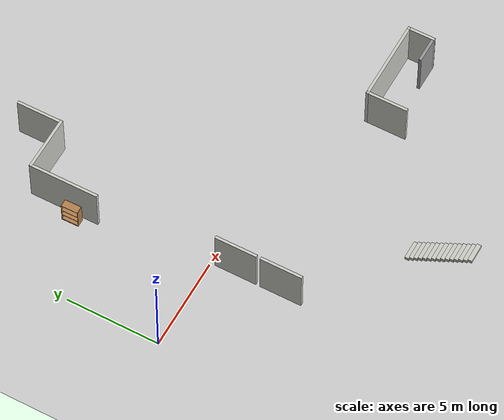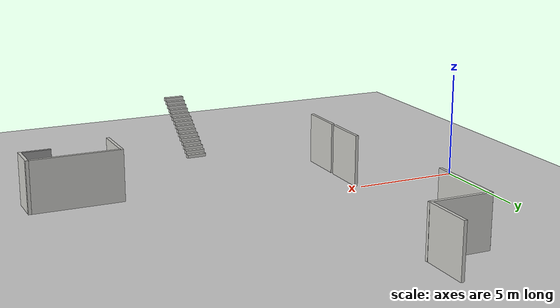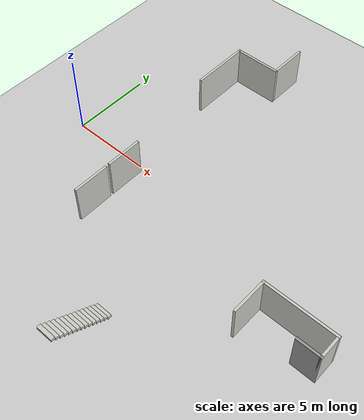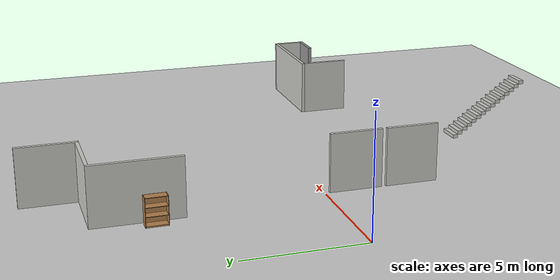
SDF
<sdf version="1.7">
 <world name="default">
  <model name="ground_plane">
   <static>1</static>
   <link name="link">
    <collision name="collision">
     <geometry><plane><normal>0 0 1</normal><size>100 100</size></plane></geometry>
     <surface>
      <contact><collide_bitmask>65535</collide_bitmask></contact>
      <friction><ode><mu>100</mu><mu2>50</mu2></ode></friction>
     </surface>
    </collision>
    <visual name="visual">
     <cast_shadows>0</cast_shadows>
     <geometry><plane><normal>0 0 1</normal><size>100 100</size></plane></geometry>
     <material>
      <script><uri>file://media/materials/scripts/gazebo.material</uri><name>Gazebo/Grey</name></script>
     </material>
    </visual>
   </link>
  </model>
  <model name="map_depo">
   <link name="Stairs_0">
    <visual name="Stairs_0_Visual_9">
     <pose>1.22447 -8.88721 1.58333 0 -0 0</pose>
     <geometry><box><size>1 0.233333 0.166667</size></box></geometry>
     <material>
      <script><uri>file://media/materials/scripts/gazebo.material</uri><name>Gazebo/CeilingTiled</name></script>
      <ambient>1 1 1 1</ambient>
      <shader type="pixel"/>
     </material>
     <meta><layer>0</layer></meta>
    </visual>
    <visual name="Stairs_0_Visual_12">
     <pose>1.22447 -9.58721 2.08333 0 -0 0</pose>
     <geometry><box><size>1 0.233333 0.166667</size></box></geometry>
     <material>
      <script><uri>file://media/materials/scripts/gazebo.material</uri><name>Gazebo/CeilingTiled</name></script>
      <ambient>1 1 1 1</ambient>
      <shader type="pixel"/>
     </material>
     <meta><layer>0</layer></meta>
    </visual>
    <visual name="Stairs_0_Visual_4">
     <pose>1.22447 -7.72054 0.75 0 -0 0</pose>
     <geometry><box><size>1 0.233333 0.166667</size></box></geometry>
     <material>
      <script><uri>file://media/materials/scripts/gazebo.material</uri><name>Gazebo/CeilingTiled</name></script>
      <ambient>1 1 1 1</ambient>
      <shader type="pixel"/>
     </material>
     <meta><layer>0</layer></meta>
    </visual>
    <visual name="Stairs_0_Visual_7">
     <pose>1.22447 -8.42054 1.25 0 -0 0</pose>
     <geometry><box><size>1 0.233333 0.166667</size></box></geometry>
     <material>
      <script><uri>file://media/materials/scripts/gazebo.material</uri><name>Gazebo/CeilingTiled</name></script>
      <ambient>1 1 1 1</ambient>
      <shader type="pixel"/>
     </material>
     <meta><layer>0</layer></meta>
    </visual>
    <visual name="Stairs_0_Visual_14">
     <pose>1.22447 -10.0539 2.41667 0 -0 0</pose>
     <geometry><box><size>1 0.233333 0.166667</size></box></geometry>
     <material>
      <script><uri>file://media/materials/scripts/gazebo.material</uri><name>Gazebo/CeilingTiled</name></script>
      <ambient>1 1 1 1</ambient>
      <shader type="pixel"/>
     </material>
     <meta><layer>0</layer></meta>
    </visual>
    <visual name="Stairs_0_Visual_0">
     <pose>1.22447 -6.78721 0.083333 0 -0 0</pose>
     <geometry><box><size>1 0.233333 0.166667</size></box></geometry>
     <material>
      <script><uri>file://media/materials/scripts/gazebo.material</uri><name>Gazebo/CeilingTiled</name></script>
      <ambient>1 1 1 1</ambient>
      <shader type="pixel"/>
     </material>
     <meta><layer>0</layer></meta>
    </visual>
    <visual name="Stairs_0_Visual_10">
     <pose>1.22447 -9.12054 1.75 0 -0 0</pose>
     <geometry><box><size>1 0.233333 0.166667</size></box></geometry>
     <material>
      <script><uri>file://media/materials/scripts/gazebo.material</uri><name>Gazebo/CeilingTiled</name></script>
      <ambient>1 1 1 1</ambient>
      <shader type="pixel"/>
     </material>
     <meta><layer>0</layer></meta>
    </visual>
    <visual name="Stairs_0_Visual_6">
     <pose>1.22447 -8.18721 1.08333 0 -0 0</pose>
     <geometry><box><size>1 0.233333 0.166667</size></box></geometry>
     <material>
      <script><uri>file://media/materials/scripts/gazebo.material</uri><name>Gazebo/CeilingTiled</name></script>
      <ambient>1 1 1 1</ambient>
      <shader type="pixel"/>
     </material>
     <meta><layer>0</layer></meta>
    </visual>
    <visual name="Stairs_0_Visual_5">
     <pose>1.22447 -7.95388 0.916667 0 -0 0</pose>
     <geometry><box><size>1 0.233333 0.166667</size></box></geometry>
     <material>
      <script><uri>file://media/materials/scripts/gazebo.material</uri><name>Gazebo/CeilingTiled</name></script>
      <ambient>1 1 1 1</ambient>
      <shader type="pixel"/>
     </material>
     <meta><layer>0</layer></meta>
    </visual>
    <visual name="Stairs_0_Visual_2">
     <pose>1.22447 -7.25387 0.416667 0 -0 0</pose>
     <geometry><box><size>1 0.233333 0.166667</size></box></geometry>
     <material>
      <script><uri>file://media/materials/scripts/gazebo.material</uri><name>Gazebo/CeilingTiled</name></script>
      <ambient>1 1 1 1</ambient>
      <shader type="pixel"/>
     </material>
     <meta><layer>0</layer></meta>
    </visual>
    <visual name="Stairs_0_Visual_8">
     <pose>1.22447 -8.65388 1.41667 0 -0 0</pose>
     <geometry><box><size>1 0.233333 0.166667</size></box></geometry>
     <material>
      <script><uri>file://media/materials/scripts/gazebo.material</uri><name>Gazebo/CeilingTiled</name></script>
      <ambient>1 1 1 1</ambient>
      <shader type="pixel"/>
     </material>
     <meta><layer>0</layer></meta>
    </visual>
    <visual name="Stairs_0_Visual_13">
     <pose>1.22447 -9.82054 2.25 0 -0 0</pose>
     <geometry><box><size>1 0.233333 0.166667</size></box></geometry>
     <material>
      <script><uri>file://media/materials/scripts/gazebo.material</uri><name>Gazebo/CeilingTiled</name></script>
      <ambient>1 1 1 1</ambient>
      <shader type="pixel"/>
     </material>
     <meta><layer>0</layer></meta>
    </visual>
    <visual name="Stairs_0_Visual_1">
     <pose>1.22447 -7.02054 0.25 0 -0 0</pose>
     <geometry><box><size>1 0.233333 0.166667</size></box></geometry>
     <material>
      <script><uri>file://media/materials/scripts/gazebo.material</uri><name>Gazebo/CeilingTiled</name></script>
      <ambient>1 1 1 1</ambient>
      <shader type="pixel"/>
     </material>
     <meta><layer>0</layer></meta>
    </visual>
    <visual name="Stairs_0_Visual_11">
     <pose>1.22447 -9.35388 1.91667 0 -0 0</pose>
     <geometry><box><size>1 0.233333 0.166667</size></box></geometry>
     <material>
      <script><uri>file://media/materials/scripts/gazebo.material</uri><name>Gazebo/CeilingTiled</name></script>
      <ambient>1 1 1 1</ambient>
      <shader type="pixel"/>
     </material>
     <meta><layer>0</layer></meta>
    </visual>
    <visual name="Stairs_0_Visual_3">
     <pose>1.22447 -7.48721 0.583333 0 -0 0</pose>
     <geometry><box><size>1 0.233333 0.166667</size></box></geometry>
     <material>
      <script><uri>file://media/materials/scripts/gazebo.material</uri><name>Gazebo/CeilingTiled</name></script>
      <ambient>1 1 1 1</ambient>
      <shader type="pixel"/>
     </material>
     <meta><layer>0</layer></meta>
    </visual>
    <collision name="Stairs_0_Collision_11">
     <pose>1.22447 -9.35388 1.91667 0 -0 0</pose>
     <geometry><box><size>1 0.233333 0.166667</size></box></geometry>
     <surface>
      <friction>
       <ode><mu>1</mu><mu2>1</mu2><fdir1>0 0 0</fdir1><slip1>0</slip1><slip2>0</slip2></ode>
       <torsional>
        <coefficient>1</coefficient>
        <patch_radius>0</patch_radius>
        <surface_radius>0</surface_radius>
        <use_patch_radius>1</use_patch_radius>
        <ode><slip>0</slip></ode>
       </torsional>
      </friction>
      <bounce><restitution_coefficient>0</restitution_coefficient><threshold>1e+06</threshold></bounce>
      <contact>
       <collide_without_contact>0</collide_without_contact>
       <collide_without_contact_bitmask>1</collide_without_contact_bitmask>
       <collide_bitmask>1</collide_bitmask>
       <ode>
        <soft_cfm>0</soft_cfm>
        <soft_erp>0.2</soft_erp>
        <kp>1e+13</kp>
        <kd>1</kd>
        <max_vel>0.01</max_vel>
        <min_depth>0</min_depth>
       </ode>
       <bullet>
        <split_impulse>1</split_impulse>
        <split_impulse_penetration_threshold>-0.01</split_impulse_penetration_threshold>
        <soft_cfm>0</soft_cfm>
        <soft_erp>0.2</soft_erp>
        <kp>1e+13</kp>
        <kd>1</kd>
       </bullet>
      </contact>
     </surface>
    </collision>
    <collision name="Stairs_0_Collision_0">
     <pose>1.22447 -6.78721 0.083333 0 -0 0</pose>
     <geometry><box><size>1 0.233333 0.166667</size></box></geometry>
     <surface>
      <friction>
       <ode><mu>1</mu><mu2>1</mu2><fdir1>0 0 0</fdir1><slip1>0</slip1><slip2>0</slip2></ode>
       <torsional>
        <coefficient>1</coefficient>
        <patch_radius>0</patch_radius>
        <surface_radius>0</surface_radius>
        <use_patch_radius>1</use_patch_radius>
        <ode><slip>0</slip></ode>
       </torsional>
      </friction>
      <bounce><restitution_coefficient>0</restitution_coefficient><threshold>1e+06</threshold></bounce>
      <contact>
       <collide_without_contact>0</collide_without_contact>
       <collide_without_contact_bitmask>1</collide_without_contact_bitmask>
       <collide_bitmask>1</collide_bitmask>
       <ode>
        <soft_cfm>0</soft_cfm>
        <soft_erp>0.2</soft_erp>
        <kp>1e+13</kp>
        <kd>1</kd>
        <max_vel>0.01</max_vel>
        <min_depth>0</min_depth>
       </ode>
       <bullet>
        <split_impulse>1</split_impulse>
        <split_impulse_penetration_threshold>-0.01</split_impulse_penetration_threshold>
        <soft_cfm>0</soft_cfm>
        <soft_erp>0.2</soft_erp>
        <kp>1e+13</kp>
        <kd>1</kd>
       </bullet>
      </contact>
     </surface>
    </collision>
    <collision name="Stairs_0_Collision_3">
     <pose>1.22447 -7.48721 0.583333 0 -0 0</pose>
     <geometry><box><size>1 0.233333 0.166667</size></box></geometry>
     <surface>
      <friction>
       <ode><mu>1</mu><mu2>1</mu2><fdir1>0 0 0</fdir1><slip1>0</slip1><slip2>0</slip2></ode>
       <torsional>
        <coefficient>1</coefficient>
        <patch_radius>0</patch_radius>
        <surface_radius>0</surface_radius>
        <use_patch_radius>1</use_patch_radius>
        <ode><slip>0</slip></ode>
       </torsional>
      </friction>
      <bounce><restitution_coefficient>0</restitution_coefficient><threshold>1e+06</threshold></bounce>
      <contact>
       <collide_without_contact>0</collide_without_contact>
       <collide_without_contact_bitmask>1</collide_without_contact_bitmask>
       <collide_bitmask>1</collide_bitmask>
       <ode>
        <soft_cfm>0</soft_cfm>
        <soft_erp>0.2</soft_erp>
        <kp>1e+13</kp>
        <kd>1</kd>
        <max_vel>0.01</max_vel>
        <min_depth>0</min_depth>
       </ode>
       <bullet>
        <split_impulse>1</split_impulse>
        <split_impulse_penetration_threshold>-0.01</split_impulse_penetration_threshold>
        <soft_cfm>0</soft_cfm>
        <soft_erp>0.2</soft_erp>
        <kp>1e+13</kp>
        <kd>1</kd>
       </bullet>
      </contact>
     </surface>
    </collision>
    <collision name="Stairs_0_Collision_9">
     <pose>1.22447 -8.88721 1.58333 0 -0 0</pose>
     <geometry><box><size>1 0.233333 0.166667</size></box></geometry>
     <surface>
      <friction>
       <ode><mu>1</mu><mu2>1</mu2><fdir1>0 0 0</fdir1><slip1>0</slip1><slip2>0</slip2></ode>
       <torsional>
        <coefficient>1</coefficient>
        <patch_radius>0</patch_radius>
        <surface_radius>0</surface_radius>
        <use_patch_radius>1</use_patch_radius>
        <ode><slip>0</slip></ode>
       </torsional>
      </friction>
      <bounce><restitution_coefficient>0</restitution_coefficient><threshold>1e+06</threshold></bounce>
      <contact>
       <collide_without_contact>0</collide_without_contact>
       <collide_without_contact_bitmask>1</collide_without_contact_bitmask>
       <collide_bitmask>1</collide_bitmask>
       <ode>
        <soft_cfm>0</soft_cfm>
        <soft_erp>0.2</soft_erp>
        <kp>1e+13</kp>
        <kd>1</kd>
        <max_vel>0.01</max_vel>
        <min_depth>0</min_depth>
       </ode>
       <bullet>
        <split_impulse>1</split_impulse>
        <split_impulse_penetration_threshold>-0.01</split_impulse_penetration_threshold>
        <soft_cfm>0</soft_cfm>
        <soft_erp>0.2</soft_erp>
        <kp>1e+13</kp>
        <kd>1</kd>
       </bullet>
      </contact>
     </surface>
    </collision>
    <collision name="Stairs_0_Collision_8">
     <pose>1.22447 -8.65388 1.41667 0 -0 0</pose>
     <geometry><box><size>1 0.233333 0.166667</size></box></geometry>
     <surface>
      <friction>
       <ode><mu>1</mu><mu2>1</mu2><fdir1>0 0 0</fdir1><slip1>0</slip1><slip2>0</slip2></ode>
       <torsional>
        <coefficient>1</coefficient>
        <patch_radius>0</patch_radius>
        <surface_radius>0</surface_radius>
        <use_patch_radius>1</use_patch_radius>
        <ode><slip>0</slip></ode>
       </torsional>
      </friction>
      <bounce><restitution_coefficient>0</restitution_coefficient><threshold>1e+06</threshold></bounce>
      <contact>
       <collide_without_contact>0</collide_without_contact>
       <collide_without_contact_bitmask>1</collide_without_contact_bitmask>
       <collide_bitmask>1</collide_bitmask>
       <ode>
        <soft_cfm>0</soft_cfm>
        <soft_erp>0.2</soft_erp>
        <kp>1e+13</kp>
        <kd>1</kd>
        <max_vel>0.01</max_vel>
        <min_depth>0</min_depth>
       </ode>
       <bullet>
        <split_impulse>1</split_impulse>
        <split_impulse_penetration_threshold>-0.01</split_impulse_penetration_threshold>
        <soft_cfm>0</soft_cfm>
        <soft_erp>0.2</soft_erp>
        <kp>1e+13</kp>
        <kd>1</kd>
       </bullet>
      </contact>
     </surface>
    </collision>
    <collision name="Stairs_0_Collision_6">
     <pose>1.22447 -8.18721 1.08333 0 -0 0</pose>
     <geometry><box><size>1 0.233333 0.166667</size></box></geometry>
     <surface>
      <friction>
       <ode><mu>1</mu><mu2>1</mu2><fdir1>0 0 0</fdir1><slip1>0</slip1><slip2>0</slip2></ode>
       <torsional>
        <coefficient>1</coefficient>
        <patch_radius>0</patch_radius>
        <surface_radius>0</surface_radius>
        <use_patch_radius>1</use_patch_radius>
        <ode><slip>0</slip></ode>
       </torsional>
      </friction>
      <bounce><restitution_coefficient>0</restitution_coefficient><threshold>1e+06</threshold></bounce>
      <contact>
       <collide_without_contact>0</collide_without_contact>
       <collide_without_contact_bitmask>1</collide_without_contact_bitmask>
       <collide_bitmask>1</collide_bitmask>
       <ode>
        <soft_cfm>0</soft_cfm>
        <soft_erp>0.2</soft_erp>
        <kp>1e+13</kp>
        <kd>1</kd>
        <max_vel>0.01</max_vel>
        <min_depth>0</min_depth>
       </ode>
       <bullet>
        <split_impulse>1</split_impulse>
        <split_impulse_penetration_threshold>-0.01</split_impulse_penetration_threshold>
        <soft_cfm>0</soft_cfm>
        <soft_erp>0.2</soft_erp>
        <kp>1e+13</kp>
        <kd>1</kd>
       </bullet>
      </contact>
     </surface>
    </collision>
    <collision name="Stairs_0_Collision_13">
     <pose>1.22447 -9.82054 2.25 0 -0 0</pose>
     <geometry><box><size>1 0.233333 0.166667</size></box></geometry>
     <surface>
      <friction>
       <ode><mu>1</mu><mu2>1</mu2><fdir1>0 0 0</fdir1><slip1>0</slip1><slip2>0</slip2></ode>
       <torsional>
        <coefficient>1</coefficient>
        <patch_radius>0</patch_radius>
        <surface_radius>0</surface_radius>
        <use_patch_radius>1</use_patch_radius>
        <ode><slip>0</slip></ode>
       </torsional>
      </friction>
      <bounce><restitution_coefficient>0</restitution_coefficient><threshold>1e+06</threshold></bounce>
      <contact>
       <collide_without_contact>0</collide_without_contact>
       <collide_without_contact_bitmask>1</collide_without_contact_bitmask>
       <collide_bitmask>1</collide_bitmask>
       <ode>
        <soft_cfm>0</soft_cfm>
        <soft_erp>0.2</soft_erp>
        <kp>1e+13</kp>
        <kd>1</kd>
        <max_vel>0.01</max_vel>
        <min_depth>0</min_depth>
       </ode>
       <bullet>
        <split_impulse>1</split_impulse>
        <split_impulse_penetration_threshold>-0.01</split_impulse_penetration_threshold>
        <soft_cfm>0</soft_cfm>
        <soft_erp>0.2</soft_erp>
        <kp>1e+13</kp>
        <kd>1</kd>
       </bullet>
      </contact>
     </surface>
    </collision>
    <collision name="Stairs_0_Collision_12">
     <pose>1.22447 -9.58721 2.08333 0 -0 0</pose>
     <geometry><box><size>1 0.233333 0.166667</size></box></geometry>
     <surface>
      <friction>
       <ode><mu>1</mu><mu2>1</mu2><fdir1>0 0 0</fdir1><slip1>0</slip1><slip2>0</slip2></ode>
       <torsional>
        <coefficient>1</coefficient>
        <patch_radius>0</patch_radius>
        <surface_radius>0</surface_radius>
        <use_patch_radius>1</use_patch_radius>
        <ode><slip>0</slip></ode>
       </torsional>
      </friction>
      <bounce><restitution_coefficient>0</restitution_coefficient><threshold>1e+06</threshold></bounce>
      <contact>
       <collide_without_contact>0</collide_without_contact>
       <collide_without_contact_bitmask>1</collide_without_contact_bitmask>
       <collide_bitmask>1</collide_bitmask>
       <ode>
        <soft_cfm>0</soft_cfm>
        <soft_erp>0.2</soft_erp>
        <kp>1e+13</kp>
        <kd>1</kd>
        <max_vel>0.01</max_vel>
        <min_depth>0</min_depth>
       </ode>
       <bullet>
        <split_impulse>1</split_impulse>
        <split_impulse_penetration_threshold>-0.01</split_impulse_penetration_threshold>
        <soft_cfm>0</soft_cfm>
        <soft_erp>0.2</soft_erp>
        <kp>1e+13</kp>
        <kd>1</kd>
       </bullet>
      </contact>
     </surface>
    </collision>
    <collision name="Stairs_0_Collision_4">
     <pose>1.22447 -7.72054 0.75 0 -0 0</pose>
     <geometry><box><size>1 0.233333 0.166667</size></box></geometry>
     <surface>
      <friction>
       <ode><mu>1</mu><mu2>1</mu2><fdir1>0 0 0</fdir1><slip1>0</slip1><slip2>0</slip2></ode>
       <torsional>
        <coefficient>1</coefficient>
        <patch_radius>0</patch_radius>
        <surface_radius>0</surface_radius>
        <use_patch_radius>1</use_patch_radius>
        <ode><slip>0</slip></ode>
       </torsional>
      </friction>
      <bounce><restitution_coefficient>0</restitution_coefficient><threshold>1e+06</threshold></bounce>
      <contact>
       <collide_without_contact>0</collide_without_contact>
       <collide_without_contact_bitmask>1</collide_without_contact_bitmask>
       <collide_bitmask>1</collide_bitmask>
       <ode>
        <soft_cfm>0</soft_cfm>
        <soft_erp>0.2</soft_erp>
        <kp>1e+13</kp>
        <kd>1</kd>
        <max_vel>0.01</max_vel>
        <min_depth>0</min_depth>
       </ode>
       <bullet>
        <split_impulse>1</split_impulse>
        <split_impulse_penetration_threshold>-0.01</split_impulse_penetration_threshold>
        <soft_cfm>0</soft_cfm>
        <soft_erp>0.2</soft_erp>
        <kp>1e+13</kp>
        <kd>1</kd>
       </bullet>
      </contact>
     </surface>
    </collision>
    <collision name="Stairs_0_Collision_7">
     <pose>1.22447 -8.42054 1.25 0 -0 0</pose>
     <geometry><box><size>1 0.233333 0.166667</size></box></geometry>
     <surface>
      <friction>
       <ode><mu>1</mu><mu2>1</mu2><fdir1>0 0 0</fdir1><slip1>0</slip1><slip2>0</slip2></ode>
       <torsional>
        <coefficient>1</coefficient>
        <patch_radius>0</patch_radius>
        <surface_radius>0</surface_radius>
        <use_patch_radius>1</use_patch_radius>
        <ode><slip>0</slip></ode>
       </torsional>
      </friction>
      <bounce><restitution_coefficient>0</restitution_coefficient><threshold>1e+06</threshold></bounce>
      <contact>
       <collide_without_contact>0</collide_without_contact>
       <collide_without_contact_bitmask>1</collide_without_contact_bitmask>
       <collide_bitmask>1</collide_bitmask>
       <ode>
        <soft_cfm>0</soft_cfm>
        <soft_erp>0.2</soft_erp>
        <kp>1e+13</kp>
        <kd>1</kd>
        <max_vel>0.01</max_vel>
        <min_depth>0</min_depth>
       </ode>
       <bullet>
        <split_impulse>1</split_impulse>
        <split_impulse_penetration_threshold>-0.01</split_impulse_penetration_threshold>
        <soft_cfm>0</soft_cfm>
        <soft_erp>0.2</soft_erp>
        <kp>1e+13</kp>
        <kd>1</kd>
       </bullet>
      </contact>
     </surface>
    </collision>
    <collision name="Stairs_0_Collision_5">
     <pose>1.22447 -7.95388 0.916667 0 -0 0</pose>
     <geometry><box><size>1 0.233333 0.166667</size></box></geometry>
     <surface>
      <friction>
       <ode><mu>1</mu><mu2>1</mu2><fdir1>0 0 0</fdir1><slip1>0</slip1><slip2>0</slip2></ode>
       <torsional>
        <coefficient>1</coefficient>
        <patch_radius>0</patch_radius>
        <surface_radius>0</surface_radius>
        <use_patch_radius>1</use_patch_radius>
        <ode><slip>0</slip></ode>
       </torsional>
      </friction>
      <bounce><restitution_coefficient>0</restitution_coefficient><threshold>1e+06</threshold></bounce>
      <contact>
       <collide_without_contact>0</collide_without_contact>
       <collide_without_contact_bitmask>1</collide_without_contact_bitmask>
       <collide_bitmask>1</collide_bitmask>
       <ode>
        <soft_cfm>0</soft_cfm>
        <soft_erp>0.2</soft_erp>
        <kp>1e+13</kp>
        <kd>1</kd>
        <max_vel>0.01</max_vel>
        <min_depth>0</min_depth>
       </ode>
       <bullet>
        <split_impulse>1</split_impulse>
        <split_impulse_penetration_threshold>-0.01</split_impulse_penetration_threshold>
        <soft_cfm>0</soft_cfm>
        <soft_erp>0.2</soft_erp>
        <kp>1e+13</kp>
        <kd>1</kd>
       </bullet>
      </contact>
     </surface>
    </collision>
    <collision name="Stairs_0_Collision_10">
     <pose>1.22447 -9.12054 1.75 0 -0 0</pose>
     <geometry><box><size>1 0.233333 0.166667</size></box></geometry>
     <surface>
      <friction>
       <ode><mu>1</mu><mu2>1</mu2><fdir1>0 0 0</fdir1><slip1>0</slip1><slip2>0</slip2></ode>
       <torsional>
        <coefficient>1</coefficient>
        <patch_radius>0</patch_radius>
        <surface_radius>0</surface_radius>
        <use_patch_radius>1</use_patch_radius>
        <ode><slip>0</slip></ode>
       </torsional>
      </friction>
      <bounce><restitution_coefficient>0</restitution_coefficient><threshold>1e+06</threshold></bounce>
      <contact>
       <collide_without_contact>0</collide_without_contact>
       <collide_without_contact_bitmask>1</collide_without_contact_bitmask>
       <collide_bitmask>1</collide_bitmask>
       <ode>
        <soft_cfm>0</soft_cfm>
        <soft_erp>0.2</soft_erp>
        <kp>1e+13</kp>
        <kd>1</kd>
        <max_vel>0.01</max_vel>
        <min_depth>0</min_depth>
       </ode>
       <bullet>
        <split_impulse>1</split_impulse>
        <split_impulse_penetration_threshold>-0.01</split_impulse_penetration_threshold>
        <soft_cfm>0</soft_cfm>
        <soft_erp>0.2</soft_erp>
        <kp>1e+13</kp>
        <kd>1</kd>
       </bullet>
      </contact>
     </surface>
    </collision>
    <collision name="Stairs_0_Collision_2">
     <pose>1.22447 -7.25387 0.416667 0 -0 0</pose>
     <geometry><box><size>1 0.233333 0.166667</size></box></geometry>
     <surface>
      <friction>
       <ode><mu>1</mu><mu2>1</mu2><fdir1>0 0 0</fdir1><slip1>0</slip1><slip2>0</slip2></ode>
       <torsional>
        <coefficient>1</coefficient>
        <patch_radius>0</patch_radius>
        <surface_radius>0</surface_radius>
        <use_patch_radius>1</use_patch_radius>
        <ode><slip>0</slip></ode>
       </torsional>
      </friction>
      <bounce><restitution_coefficient>0</restitution_coefficient><threshold>1e+06</threshold></bounce>
      <contact>
       <collide_without_contact>0</collide_without_contact>
       <collide_without_contact_bitmask>1</collide_without_contact_bitmask>
       <collide_bitmask>1</collide_bitmask>
       <ode>
        <soft_cfm>0</soft_cfm>
        <soft_erp>0.2</soft_erp>
        <kp>1e+13</kp>
        <kd>1</kd>
        <max_vel>0.01</max_vel>
        <min_depth>0</min_depth>
       </ode>
       <bullet>
        <split_impulse>1</split_impulse>
        <split_impulse_penetration_threshold>-0.01</split_impulse_penetration_threshold>
        <soft_cfm>0</soft_cfm>
        <soft_erp>0.2</soft_erp>
        <kp>1e+13</kp>
        <kd>1</kd>
       </bullet>
      </contact>
     </surface>
    </collision>
    <collision name="Stairs_0_Collision_14">
     <pose>1.22447 -10.0539 2.41667 0 -0 0</pose>
     <geometry><box><size>1 0.233333 0.166667</size></box></geometry>
     <surface>
      <friction>
       <ode><mu>1</mu><mu2>1</mu2><fdir1>0 0 0</fdir1><slip1>0</slip1><slip2>0</slip2></ode>
       <torsional>
        <coefficient>1</coefficient>
        <patch_radius>0</patch_radius>
        <surface_radius>0</surface_radius>
        <use_patch_radius>1</use_patch_radius>
        <ode><slip>0</slip></ode>
       </torsional>
      </friction>
      <bounce><restitution_coefficient>0</restitution_coefficient><threshold>1e+06</threshold></bounce>
      <contact>
       <collide_without_contact>0</collide_without_contact>
       <collide_without_contact_bitmask>1</collide_without_contact_bitmask>
       <collide_bitmask>1</collide_bitmask>
       <ode>
        <soft_cfm>0</soft_cfm>
        <soft_erp>0.2</soft_erp>
        <kp>1e+13</kp>
        <kd>1</kd>
        <max_vel>0.01</max_vel>
        <min_depth>0</min_depth>
       </ode>
       <bullet>
        <split_impulse>1</split_impulse>
        <split_impulse_penetration_threshold>-0.01</split_impulse_penetration_threshold>
        <soft_cfm>0</soft_cfm>
        <soft_erp>0.2</soft_erp>
        <kp>1e+13</kp>
        <kd>1</kd>
       </bullet>
      </contact>
     </surface>
    </collision>
    <collision name="Stairs_0_Collision_1">
     <pose>1.22447 -7.02054 0.25 0 -0 0</pose>
     <geometry><box><size>1 0.233333 0.166667</size></box></geometry>
     <surface>
      <friction>
       <ode><mu>1</mu><mu2>1</mu2><fdir1>0 0 0</fdir1><slip1>0</slip1><slip2>0</slip2></ode>
       <torsional>
        <coefficient>1</coefficient>
        <patch_radius>0</patch_radius>
        <surface_radius>0</surface_radius>
        <use_patch_radius>1</use_patch_radius>
        <ode><slip>0</slip></ode>
       </torsional>
      </friction>
      <bounce><restitution_coefficient>0</restitution_coefficient><threshold>1e+06</threshold></bounce>
      <contact>
       <collide_without_contact>0</collide_without_contact>
       <collide_without_contact_bitmask>1</collide_without_contact_bitmask>
       <collide_bitmask>1</collide_bitmask>
       <ode>
        <soft_cfm>0</soft_cfm>
        <soft_erp>0.2</soft_erp>
        <kp>1e+13</kp>
        <kd>1</kd>
        <max_vel>0.01</max_vel>
        <min_depth>0</min_depth>
       </ode>
       <bullet>
        <split_impulse>1</split_impulse>
        <split_impulse_penetration_threshold>-0.01</split_impulse_penetration_threshold>
        <soft_cfm>0</soft_cfm>
        <soft_erp>0.2</soft_erp>
        <kp>1e+13</kp>
        <kd>1</kd>
       </bullet>
      </contact>
     </surface>
    </collision>
   </link>
   <link name="Wall_13">
    <pose>-1.7996 12.06 0 0 0 -1.5708</pose>
    <visual name="Wall_13_Visual">
     <pose>0 0 1.25 0 -0 0</pose>
     <geometry><box><size>2.5 0.15 2.5</size></box></geometry>
     <material>
      <script><uri>file://media/materials/scripts/gazebo.material</uri><name>Gazebo/CeilingTiled</name></script>
      <ambient>1 1 1 1</ambient>
      <shader type="pixel"/>
     </material>
     <meta><layer>0</layer></meta>
    </visual>
    <collision name="Wall_13_Collision">
     <pose>0 0 1.25 0 -0 0</pose>
     <geometry><box><size>2.5 0.15 2.5</size></box></geometry>
     <surface>
      <friction>
       <ode><mu>1</mu><mu2>1</mu2><fdir1>0 0 0</fdir1><slip1>0</slip1><slip2>0</slip2></ode>
       <torsional>
        <coefficient>1</coefficient>
        <patch_radius>0</patch_radius>
        <surface_radius>0</surface_radius>
        <use_patch_radius>1</use_patch_radius>
        <ode><slip>0</slip></ode>
       </torsional>
      </friction>
      <bounce><restitution_coefficient>0</restitution_coefficient><threshold>1e+06</threshold></bounce>
      <contact>
       <collide_without_contact>0</collide_without_contact>
       <collide_without_contact_bitmask>1</collide_without_contact_bitmask>
       <collide_bitmask>1</collide_bitmask>
       <ode>
        <soft_cfm>0</soft_cfm>
        <soft_erp>0.2</soft_erp>
        <kp>1e+13</kp>
        <kd>1</kd>
        <max_vel>0.01</max_vel>
        <min_depth>0</min_depth>
       </ode>
       <bullet>
        <split_impulse>1</split_impulse>
        <split_impulse_penetration_threshold>-0.01</split_impulse_penetration_threshold>
        <soft_cfm>0</soft_cfm>
        <soft_erp>0.2</soft_erp>
        <kp>1e+13</kp>
        <kd>1</kd>
       </bullet>
      </contact>
     </surface>
    </collision>
   </link>
   <link name="Wall_14">
    <pose>-3.21429 10.885 0 0 -0 3.14159</pose>
    <visual name="Wall_14_Visual">
     <pose>0 0 1.25 0 -0 0</pose>
     <geometry><box><size>3 0.15 2.5</size></box></geometry>
     <material>
      <script><uri>file://media/materials/scripts/gazebo.material</uri><name>Gazebo/CeilingTiled</name></script>
      <ambient>1 1 1 1</ambient>
      <shader type="pixel"/>
     </material>
     <meta><layer>0</layer></meta>
    </visual>
    <collision name="Wall_14_Collision">
     <pose>0 0 1.25 0 -0 0</pose>
     <geometry><box><size>3 0.15 2.5</size></box></geometry>
     <surface>
      <friction>
       <ode><mu>1</mu><mu2>1</mu2><fdir1>0 0 0</fdir1><slip1>0</slip1><slip2>0</slip2></ode>
       <torsional>
        <coefficient>1</coefficient>
        <patch_radius>0</patch_radius>
        <surface_radius>0</surface_radius>
        <use_patch_radius>1</use_patch_radius>
        <ode><slip>0</slip></ode>
       </torsional>
      </friction>
      <bounce><restitution_coefficient>0</restitution_coefficient><threshold>1e+06</threshold></bounce>
      <contact>
       <collide_without_contact>0</collide_without_contact>
       <collide_without_contact_bitmask>1</collide_without_contact_bitmask>
       <collide_bitmask>1</collide_bitmask>
       <ode>
        <soft_cfm>0</soft_cfm>
        <soft_erp>0.2</soft_erp>
        <kp>1e+13</kp>
        <kd>1</kd>
        <max_vel>0.01</max_vel>
        <min_depth>0</min_depth>
       </ode>
       <bullet>
        <split_impulse>1</split_impulse>
        <split_impulse_penetration_threshold>-0.01</split_impulse_penetration_threshold>
        <soft_cfm>0</soft_cfm>
        <soft_erp>0.2</soft_erp>
        <kp>1e+13</kp>
        <kd>1</kd>
       </bullet>
      </contact>
     </surface>
    </collision>
   </link>
   <link name="Wall_16">
    <pose>-4.6414 9.08497 0 0 0 -1.5708</pose>
    <visual name="Wall_16_Visual">
     <pose>0 0 1.25 0 -0 0</pose>
     <geometry><box><size>3.75 0.15 2.5</size></box></geometry>
     <material>
      <script><uri>file://media/materials/scripts/gazebo.material</uri><name>Gazebo/CeilingTiled</name></script>
      <ambient>1 1 1 1</ambient>
      <shader type="pixel"/>
     </material>
     <meta><layer>0</layer></meta>
    </visual>
    <collision name="Wall_16_Collision">
     <pose>0 0 1.25 0 -0 0</pose>
     <geometry><box><size>3.75 0.15 2.5</size></box></geometry>
     <surface>
      <friction>
       <ode><mu>1</mu><mu2>1</mu2><fdir1>0 0 0</fdir1><slip1>0</slip1><slip2>0</slip2></ode>
       <torsional>
        <coefficient>1</coefficient>
        <patch_radius>0</patch_radius>
        <surface_radius>0</surface_radius>
        <use_patch_radius>1</use_patch_radius>
        <ode><slip>0</slip></ode>
       </torsional>
      </friction>
      <bounce><restitution_coefficient>0</restitution_coefficient><threshold>1e+06</threshold></bounce>
      <contact>
       <collide_without_contact>0</collide_without_contact>
       <collide_without_contact_bitmask>1</collide_without_contact_bitmask>
       <collide_bitmask>1</collide_bitmask>
       <ode>
        <soft_cfm>0</soft_cfm>
        <soft_erp>0.2</soft_erp>
        <kp>1e+13</kp>
        <kd>1</kd>
        <max_vel>0.01</max_vel>
        <min_depth>0</min_depth>
       </ode>
       <bullet>
        <split_impulse>1</split_impulse>
        <split_impulse_penetration_threshold>-0.01</split_impulse_penetration_threshold>
        <soft_cfm>0</soft_cfm>
        <soft_erp>0.2</soft_erp>
        <kp>1e+13</kp>
        <kd>1</kd>
       </bullet>
      </contact>
     </surface>
    </collision>
   </link>
   <link name="Wall_23">
    <pose>-3.92312 0.014856 0 0 0 -1.5708</pose>
    <visual name="Wall_23_Visual">
     <pose>0 0 1.25 0 -0 0</pose>
     <geometry><box><size>2.25 0.15 2.5</size></box></geometry>
     <material>
      <script><uri>file://media/materials/scripts/gazebo.material</uri><name>Gazebo/CeilingTiled</name></script>
      <ambient>1 1 1 1</ambient>
      <shader type="pixel"/>
     </material>
     <meta><layer>0</layer></meta>
    </visual>
    <collision name="Wall_23_Collision">
     <pose>0 0 1.25 0 -0 0</pose>
     <geometry><box><size>2.25 0.15 2.5</size></box></geometry>
     <surface>
      <friction>
       <ode><mu>1</mu><mu2>1</mu2><fdir1>0 0 0</fdir1><slip1>0</slip1><slip2>0</slip2></ode>
       <torsional>
        <coefficient>1</coefficient>
        <patch_radius>0</patch_radius>
        <surface_radius>0</surface_radius>
        <use_patch_radius>1</use_patch_radius>
        <ode><slip>0</slip></ode>
       </torsional>
      </friction>
      <bounce><restitution_coefficient>0</restitution_coefficient><threshold>1e+06</threshold></bounce>
      <contact>
       <collide_without_contact>0</collide_without_contact>
       <collide_without_contact_bitmask>1</collide_without_contact_bitmask>
       <collide_bitmask>1</collide_bitmask>
       <ode>
        <soft_cfm>0</soft_cfm>
        <soft_erp>0.2</soft_erp>
        <kp>1e+13</kp>
        <kd>1</kd>
        <max_vel>0.01</max_vel>
        <min_depth>0</min_depth>
       </ode>
       <bullet>
        <split_impulse>1</split_impulse>
        <split_impulse_penetration_threshold>-0.01</split_impulse_penetration_threshold>
        <soft_cfm>0</soft_cfm>
        <soft_erp>0.2</soft_erp>
        <kp>1e+13</kp>
        <kd>1</kd>
       </bullet>
      </contact>
     </surface>
    </collision>
   </link>
   <link name="Wall_59">
    <pose>-3.92312 -2.43514 0 0 0 -1.5708</pose>
    <visual name="Wall_59_Visual">
     <pose>0 0 1.25 0 -0 0</pose>
     <geometry><box><size>2.25 0.15 2.5</size></box></geometry>
     <material>
      <script><uri>file://media/materials/scripts/gazebo.material</uri><name>Gazebo/CeilingTiled</name></script>
      <ambient>1 1 1 1</ambient>
      <shader type="pixel"/>
     </material>
     <meta><layer>0</layer></meta>
    </visual>
    <collision name="Wall_59_Collision">
     <pose>0 0 1.25 0 -0 0</pose>
     <geometry><box><size>2.25 0.15 2.5</size></box></geometry>
     <surface>
      <friction>
       <ode><mu>1</mu><mu2>1</mu2><fdir1>0 0 0</fdir1><slip1>0</slip1><slip2>0</slip2></ode>
       <torsional>
        <coefficient>1</coefficient>
        <patch_radius>0</patch_radius>
        <surface_radius>0</surface_radius>
        <use_patch_radius>1</use_patch_radius>
        <ode><slip>0</slip></ode>
       </torsional>
      </friction>
      <bounce><restitution_coefficient>0</restitution_coefficient><threshold>1e+06</threshold></bounce>
      <contact>
       <collide_without_contact>0</collide_without_contact>
       <collide_without_contact_bitmask>1</collide_without_contact_bitmask>
       <collide_bitmask>1</collide_bitmask>
       <ode>
        <soft_cfm>0</soft_cfm>
        <soft_erp>0.2</soft_erp>
        <kp>1e+13</kp>
        <kd>1</kd>
        <max_vel>0.01</max_vel>
        <min_depth>0</min_depth>
       </ode>
       <bullet>
        <split_impulse>1</split_impulse>
        <split_impulse_penetration_threshold>-0.01</split_impulse_penetration_threshold>
        <soft_cfm>0</soft_cfm>
        <soft_erp>0.2</soft_erp>
        <kp>1e+13</kp>
        <kd>1</kd>
       </bullet>
      </contact>
     </surface>
    </collision>
   </link>
   <link name="Wall_94">
    <pose>10.5749 -2.68497 0 0 -0 0</pose>
    <visual name="Wall_94_Visual">
     <pose>0 0 1.25 0 -0 0</pose>
     <geometry><box><size>1.5 0.15 2.5</size></box></geometry>
     <material>
      <script><uri>file://media/materials/scripts/gazebo.material</uri><name>Gazebo/Grey</name></script>
      <ambient>1 1 1 1</ambient>
      <shader type="pixel"/>
     </material>
     <meta><layer>0</layer></meta>
    </visual>
    <collision name="Wall_94_Collision">
     <pose>0 0 1.25 0 -0 0</pose>
     <geometry><box><size>1.5 0.15 2.5</size></box></geometry>
     <surface>
      <friction>
       <ode><mu>1</mu><mu2>1</mu2><fdir1>0 0 0</fdir1><slip1>0</slip1><slip2>0</slip2></ode>
       <torsional>
        <coefficient>1</coefficient>
        <patch_radius>0</patch_radius>
        <surface_radius>0</surface_radius>
        <use_patch_radius>1</use_patch_radius>
        <ode><slip>0</slip></ode>
       </torsional>
      </friction>
      <bounce><restitution_coefficient>0</restitution_coefficient><threshold>1e+06</threshold></bounce>
      <contact>
       <collide_without_contact>0</collide_without_contact>
       <collide_without_contact_bitmask>1</collide_without_contact_bitmask>
       <collide_bitmask>1</collide_bitmask>
       <ode>
        <soft_cfm>0</soft_cfm>
        <soft_erp>0.2</soft_erp>
        <kp>1e+13</kp>
        <kd>1</kd>
        <max_vel>0.01</max_vel>
        <min_depth>0</min_depth>
       </ode>
       <bullet>
        <split_impulse>1</split_impulse>
        <split_impulse_penetration_threshold>-0.01</split_impulse_penetration_threshold>
        <soft_cfm>0</soft_cfm>
        <soft_erp>0.2</soft_erp>
        <kp>1e+13</kp>
        <kd>1</kd>
       </bullet>
      </contact>
     </surface>
    </collision>
   </link>
   <link name="Wall_95">
    <pose>11.2499 -2.00997 0 0 -0 1.5708</pose>
    <visual name="Wall_95_Visual">
     <pose>0 0 1.25 0 -0 0</pose>
     <geometry><box><size>1.5 0.15 2.5</size></box></geometry>
     <material>
      <script><uri>file://media/materials/scripts/gazebo.material</uri><name>Gazebo/CeilingTiled</name></script>
      <ambient>1 1 1 1</ambient>
      <shader type="pixel"/>
     </material>
     <meta><layer>0</layer></meta>
    </visual>
    <collision name="Wall_95_Collision">
     <pose>0 0 1.25 0 -0 0</pose>
     <geometry><box><size>1.5 0.15 2.5</size></box></geometry>
     <surface>
      <friction>
       <ode><mu>1</mu><mu2>1</mu2><fdir1>0 0 0</fdir1><slip1>0</slip1><slip2>0</slip2></ode>
       <torsional>
        <coefficient>1</coefficient>
        <patch_radius>0</patch_radius>
        <surface_radius>0</surface_radius>
        <use_patch_radius>1</use_patch_radius>
        <ode><slip>0</slip></ode>
       </torsional>
      </friction>
      <bounce><restitution_coefficient>0</restitution_coefficient><threshold>1e+06</threshold></bounce>
      <contact>
       <collide_without_contact>0</collide_without_contact>
       <collide_without_contact_bitmask>1</collide_without_contact_bitmask>
       <collide_bitmask>1</collide_bitmask>
       <ode>
        <soft_cfm>0</soft_cfm>
        <soft_erp>0.2</soft_erp>
        <kp>1e+13</kp>
        <kd>1</kd>
        <max_vel>0.01</max_vel>
        <min_depth>0</min_depth>
       </ode>
       <bullet>
        <split_impulse>1</split_impulse>
        <split_impulse_penetration_threshold>-0.01</split_impulse_penetration_threshold>
        <soft_cfm>0</soft_cfm>
        <soft_erp>0.2</soft_erp>
        <kp>1e+13</kp>
        <kd>1</kd>
       </bullet>
      </contact>
     </surface>
    </collision>
   </link>
   <link name="Wall_96">
    <pose>9.07491 -1.33497 0 0 -0 3.14159</pose>
    <visual name="Wall_96_Visual">
     <pose>0 0 1.25 0 -0 0</pose>
     <geometry><box><size>4.5 0.15 2.5</size></box></geometry>
     <material>
      <script><uri>file://media/materials/scripts/gazebo.material</uri><name>Gazebo/CeilingTiled</name></script>
      <ambient>1 1 1 1</ambient>
      <shader type="pixel"/>
     </material>
     <meta><layer>0</layer></meta>
    </visual>
    <collision name="Wall_96_Collision">
     <pose>0 0 1.25 0 -0 0</pose>
     <geometry><box><size>4.5 0.15 2.5</size></box></geometry>
     <surface>
      <friction>
       <ode><mu>1</mu><mu2>1</mu2><fdir1>0 0 0</fdir1><slip1>0</slip1><slip2>0</slip2></ode>
       <torsional>
        <coefficient>1</coefficient>
        <patch_radius>0</patch_radius>
        <surface_radius>0</surface_radius>
        <use_patch_radius>1</use_patch_radius>
        <ode><slip>0</slip></ode>
       </torsional>
      </friction>
      <bounce><restitution_coefficient>0</restitution_coefficient><threshold>1e+06</threshold></bounce>
      <contact>
       <collide_without_contact>0</collide_without_contact>
       <collide_without_contact_bitmask>1</collide_without_contact_bitmask>
       <collide_bitmask>1</collide_bitmask>
       <ode>
        <soft_cfm>0</soft_cfm>
        <soft_erp>0.2</soft_erp>
        <kp>1e+13</kp>
        <kd>1</kd>
        <max_vel>0.01</max_vel>
        <min_depth>0</min_depth>
       </ode>
       <bullet>
        <split_impulse>1</split_impulse>
        <split_impulse_penetration_threshold>-0.01</split_impulse_penetration_threshold>
        <soft_cfm>0</soft_cfm>
        <soft_erp>0.2</soft_erp>
        <kp>1e+13</kp>
        <kd>1</kd>
       </bullet>
      </contact>
     </surface>
    </collision>
   </link>
   <link name="Wall_97">
    <pose>6.89991 -2.38497 0 0 0 -1.5708</pose>
    <visual name="Wall_97_Visual">
     <pose>0 0 1.25 0 -0 0</pose>
     <geometry><box><size>2.25 0.15 2.5</size></box></geometry>
     <material>
      <script><uri>file://media/materials/scripts/gazebo.material</uri><name>Gazebo/CeilingTiled</name></script>
      <ambient>1 1 1 1</ambient>
      <shader type="pixel"/>
     </material>
     <meta><layer>0</layer></meta>
    </visual>
    <collision name="Wall_97_Collision">
     <pose>0 0 1.25 0 -0 0</pose>
     <geometry><box><size>2.25 0.15 2.5</size></box></geometry>
     <surface>
      <friction>
       <ode><mu>1</mu><mu2>1</mu2><fdir1>0 0 0</fdir1><slip1>0</slip1><slip2>0</slip2></ode>
       <torsional>
        <coefficient>1</coefficient>
        <patch_radius>0</patch_radius>
        <surface_radius>0</surface_radius>
        <use_patch_radius>1</use_patch_radius>
        <ode><slip>0</slip></ode>
       </torsional>
      </friction>
      <bounce><restitution_coefficient>0</restitution_coefficient><threshold>1e+06</threshold></bounce>
      <contact>
       <collide_without_contact>0</collide_without_contact>
       <collide_without_contact_bitmask>1</collide_without_contact_bitmask>
       <collide_bitmask>1</collide_bitmask>
       <ode>
        <soft_cfm>0</soft_cfm>
        <soft_erp>0.2</soft_erp>
        <kp>1e+13</kp>
        <kd>1</kd>
        <max_vel>0.01</max_vel>
        <min_depth>0</min_depth>
       </ode>
       <bullet>
        <split_impulse>1</split_impulse>
        <split_impulse_penetration_threshold>-0.01</split_impulse_penetration_threshold>
        <soft_cfm>0</soft_cfm>
        <soft_erp>0.2</soft_erp>
        <kp>1e+13</kp>
        <kd>1</kd>
       </bullet>
      </contact>
     </surface>
    </collision>
   </link>
   <static>1</static>
   <pose>9.09356 -1.35985 0 0 -0 0</pose>
  </model>
  <model name="bookshelf_clone_0">
   <static>1</static>
   <link name="link">
    <inertial><mass>1</mass></inertial>
    <collision name="back">
     <pose>0 0.005 0.6 0 -0 0</pose>
     <geometry><box><size>0.9 0.01 1.2</size></box></geometry>
    </collision>
    <visual name="visual1">
     <pose>0 0.005 0.6 0 -0 0</pose>
     <geometry><box><size>0.9 0.01 1.2</size></box></geometry>
     <material>
      <script><uri>file://media/materials/scripts/gazebo.material</uri><name>Gazebo/Wood</name></script>
     </material>
    </visual>
    <collision name="left_side">
     <pose>0.45 -0.195 0.6 0 -0 0</pose>
     <geometry><box><size>0.02 0.4 1.2</size></box></geometry>
    </collision>
    <visual name="visual2">
     <pose>0.45 -0.195 0.6 0 -0 0</pose>
     <geometry><box><size>0.02 0.4 1.2</size></box></geometry>
     <material>
      <script><uri>file://media/materials/scripts/gazebo.material</uri><name>Gazebo/Wood</name></script>
     </material>
    </visual>
    <collision name="right_side">
     <pose>-0.45 -0.195 0.6 0 -0 0</pose>
     <geometry><box><size>0.02 0.4 1.2</size></box></geometry>
    </collision>
    <visual name="visual3">
     <pose>-0.45 -0.195 0.6 0 -0 0</pose>
     <geometry><box><size>0.02 0.4 1.2</size></box></geometry>
     <material>
      <script><uri>file://media/materials/scripts/gazebo.material</uri><name>Gazebo/Wood</name></script>
     </material>
    </visual>
    <collision name="bottom">
     <pose>0 -0.195 0.03 0 -0 0</pose>
     <geometry><box><size>0.88 0.4 0.06</size></box></geometry>
    </collision>
    <visual name="visual4">
     <pose>0 -0.195 0.03 0 -0 0</pose>
     <geometry><box><size>0.88 0.4 0.06</size></box></geometry>
     <material>
      <script><uri>file://media/materials/scripts/gazebo.material</uri><name>Gazebo/Wood</name></script>
     </material>
    </visual>
    <collision name="top">
     <pose>0 -0.195 1.19 0 -0 0</pose>
     <geometry><box><size>0.88 0.4 0.02</size></box></geometry>
    </collision>
    <visual name="visual5">
     <pose>0 -0.195 1.19 0 -0 0</pose>
     <geometry><box><size>0.88 0.4 0.02</size></box></geometry>
     <material>
      <script><uri>file://media/materials/scripts/gazebo.material</uri><name>Gazebo/Wood</name></script>
     </material>
    </visual>
    <collision name="low_shelf">
     <pose>0 -0.195 0.43 0 -0 0</pose>
     <geometry><box><size>0.88 0.4 0.02</size></box></geometry>
    </collision>
    <visual name="visual6">
     <pose>0 -0.195 0.43 0 -0 0</pose>
     <geometry><box><size>0.88 0.4 0.02</size></box></geometry>
     <material>
      <script><uri>file://media/materials/scripts/gazebo.material</uri><name>Gazebo/Wood</name></script>
     </material>
    </visual>
    <collision name="high_shelf">
     <pose>0 -0.195 0.8 0 -0 0</pose>
     <geometry><box><size>0.88 0.4 0.02</size></box></geometry>
    </collision>
    <visual name="visual7">
     <pose>0 -0.195 0.8 0 -0 0</pose>
     <geometry><box><size>0.88 0.4 0.02</size></box></geometry>
     <material>
      <script><uri>file://media/materials/scripts/gazebo.material</uri><name>Gazebo/Wood</name></script>
     </material>
    </visual>
   </link>
   <pose>4.2205 7.09691 0 0 0 -1.55786</pose>
  </model>
 </world>
</sdf>
